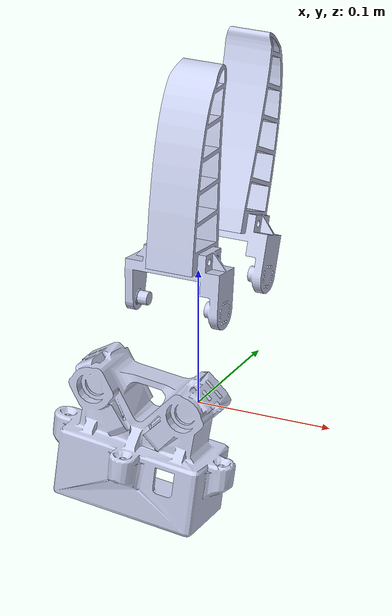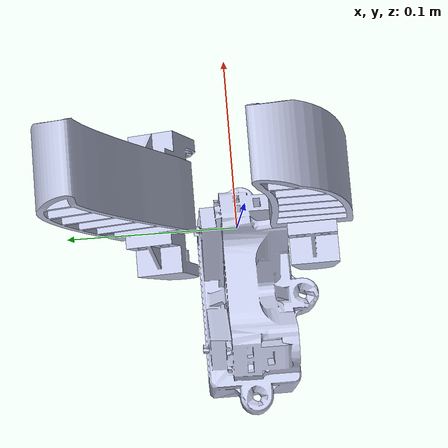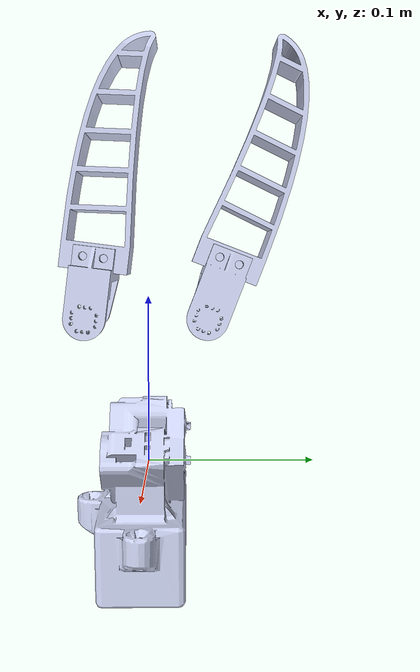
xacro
<?xml version="1.0" encoding="utf-8"?>
<robot xmlns:xacro="http://ros.org/wiki/xacro" name="dashgo">

  <!-- load gripper -->
  <xacro:include filename="$(find robot_description)/urdf/gripper/gripper.urdf.xacro" />
  <xacro:load_gripper attach_to="" xyz="0 0 0" rpy="0 0 0" />

</robot>

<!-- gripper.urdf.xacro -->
<robot xmlns:xacro="http://ros.org/wiki/xacro" name="Gripper">
  <xacro:macro name="load_gripper" params="attach_to:='' xyz:='0 0 0' rpy:='0 0 0'">
    <xacro:unless value="${attach_to == ''}">
      <joint name="gripper_fix" type="fixed">
        <parent link="${attach_to}"/>
        <child link="Base_Gripper"/>
        <origin xyz="${xyz}" rpy="${rpy}"/>
      </joint>
    </xacro:unless>
    <link
      name="Base_Gripper">
      <inertial>
        <origin
          xyz="-0.0060074 0.00022945 0.055534"
          rpy="0 0 0" />
        <mass
          value="0.25675" />
        <inertia
          ixx="0.00029732"
          ixy="5.577E-07"
          ixz="6.8196E-06"
          iyy="0.0001154"
          iyz="-6.3991E-07"
          izz="0.00028425" />
      </inertial>
      <visual>
        <origin
          xyz="0 0 0"
          rpy="0 0 0" />
        <geometry>
          <mesh
            filename="package://robot_description/meshes/Gripper/Base.STL" />
        </geometry>
        <material
          name="">
          <color
            rgba="0.79216 0.81961 0.93333 1" />
        </material>
      </visual>
      <collision>
        <origin
          xyz="0 0 0"
          rpy="0 0 0" />
        <geometry>
          <mesh
            filename="package://robot_description/meshes/Gripper/Base.STL" />
        </geometry>
      </collision>
    </link>
    <link
      name="Servo1">
      <inertial>
        <origin
          xyz="-4.50497350326651E-08 0.00440252858837619 0.0186297249994029"
          rpy="0 0 0" />
        <mass
          value="0.0250047254852256" />
        <inertia
          ixx="1.36408467918995E-05"
          ixy="1.57759886426113E-19"
          ixz="-1.71524171818996E-19"
          iyy="3.54946158391808E-06"
          iyz="-1.80956359903929E-06"
          izz="1.22463749616553E-05" />
      </inertial>
      <visual>
        <origin
          xyz="0 0 0"
          rpy="0 0 0" />
        <geometry>
          <mesh
            filename="package://robot_description/meshes/Gripper/Servo1.STL" />
        </geometry>
        <material
          name="">
          <color
            rgba="0.792156862745098 0.819607843137255 0.933333333333333 1" />
        </material>
      </visual>
      <collision>
        <origin
          xyz="0 0 0"
          rpy="0 0 0" />
        <geometry>
          <mesh
            filename="package://robot_description/meshes/Gripper/Servo1.STL" />
        </geometry>
      </collision>
    </link>
    <joint
      name="Rev1Servo"
      type="revolute">
      <origin
        xyz="0 0.035167 0.088595"
        rpy="0 -0.36888 -1.5708" />
      <parent
        link="Base_Gripper" />
      <child
        link="Servo1" />
      <axis
        xyz="0 1 0" />
      <limit
        lower="-0.349066"
        upper="0.349066"
        effort="0"
        velocity="0" />
    </joint>
    <link
      name="Dedo1">
      <inertial>
        <origin
          xyz="-0.0339572900023838 -9.3618305648923E-08 0.148246675379403"
          rpy="0 0 0" />
        <mass
          value="0.0622990489702351" />
        <inertia
          ixx="0.000123328183626577"
          ixy="-1.22881098411723E-10"
          ixz="-5.84361445598599E-06"
          iyy="0.000126724273269253"
          iyz="1.57270956526926E-10"
          izz="1.60489416583839E-05" />
      </inertial>
      <visual>
        <origin
          xyz="0 0 0"
          rpy="0 0 0" />
        <geometry>
          <mesh
            filename="package://robot_description/meshes/Gripper/Dedo1.STL" />
        </geometry>
        <material
          name="">
          <color
            rgba="0.792156862745098 0.819607843137255 0.933333333333333 1" />
        </material>
      </visual>
      <collision>
        <origin
          xyz="0 0 0"
          rpy="0 0 0" />
        <geometry>
          <mesh
            filename="package://robot_description/meshes/Gripper/Dedo1.STL" />
        </geometry>
      </collision>
    </link>
    <joint
      name="Fix1Dedo"
      type="fixed">
      <origin
        xyz="0.035 0.0021425 -0.0685"
        rpy="0 0 0" />
      <parent
        link="Servo1" />
      <child
        link="Dedo1" />
      <axis
        xyz="0 0 0" />
    </joint>
    <link
      name="Servo2">
      <inertial>
        <origin
          xyz="-4.50497350118484E-08 0.00440252858837639 0.0186297249994028"
          rpy="0 0 0" />
        <mass
          value="0.0250047254852253" />
        <inertia
          ixx="1.36408467918995E-05"
          ixy="1.66044927441445E-19"
          ixz="-1.7205356741103E-19"
          iyy="3.54946158391805E-06"
          iyz="-1.80956359903932E-06"
          izz="1.22463749616553E-05" />
      </inertial>
      <visual>
        <origin
          xyz="0 0 0"
          rpy="0 0 0" />
        <geometry>
          <mesh
            filename="package://robot_description/meshes/Gripper/Servo2.STL" />
        </geometry>
        <material
          name="">
          <color
            rgba="0.792156862745098 0.819607843137255 0.933333333333333 1" />
        </material>
      </visual>
      <collision>
        <origin
          xyz="0 0 0"
          rpy="0 0 0" />
        <geometry>
          <mesh
            filename="package://robot_description/meshes/Gripper/Servo2.STL" />
        </geometry>
      </collision>
    </link>
    <joint
      name="Rev2Servo"
      type="revolute">
      <origin
        xyz="0 -0.034832 0.088595"
        rpy="0 -0.12482 -1.5708" />
      <parent
        link="Base_Gripper" />
      <child
        link="Servo2" />
      <axis
        xyz="0 1 0" />
      <limit
        lower="-0.349066"
        upper="0.349066"
        effort="0"
        velocity="0" />
    </joint>
    <link
      name="Dedo2">
      <inertial>
        <origin
          xyz="-0.0339571351919315 -9.20512037367108E-08 0.148247430105431"
          rpy="0 0 0" />
        <mass
          value="0.0622996947963828" />
        <inertia
          ixx="0.000123327640391479"
          ixy="-1.34548142614061E-10"
          ixz="-5.84362978685844E-06"
          iyy="0.000126723917872848"
          iyz="1.53337647171162E-10"
          izz="1.60491213480393E-05" />
      </inertial>
      <visual>
        <origin
          xyz="0 0 0"
          rpy="0 0 0" />
        <geometry>
          <mesh
            filename="package://robot_description/meshes/Gripper/Dedo2.STL" />
        </geometry>
        <material
          name="">
          <color
            rgba="0.792156862745098 0.819607843137255 0.933333333333333 1" />
        </material>
      </visual>
      <collision>
        <origin
          xyz="0 0 0"
          rpy="0 0 0" />
        <geometry>
          <mesh
            filename="package://robot_description/meshes/Gripper/Dedo2.STL" />
        </geometry>
      </collision>
    </link>
    <joint
      name="Fix2Dedo"
      type="fixed">
      <origin
        xyz="-0.035 0.0021425 -0.0685"
        rpy="0 0 -3.1416" />
      <parent
        link="Servo2" />
      <child
        link="Dedo2" />
      <axis
        xyz="0 0 0" />
    </joint>
  </xacro:macro>
</robot>
